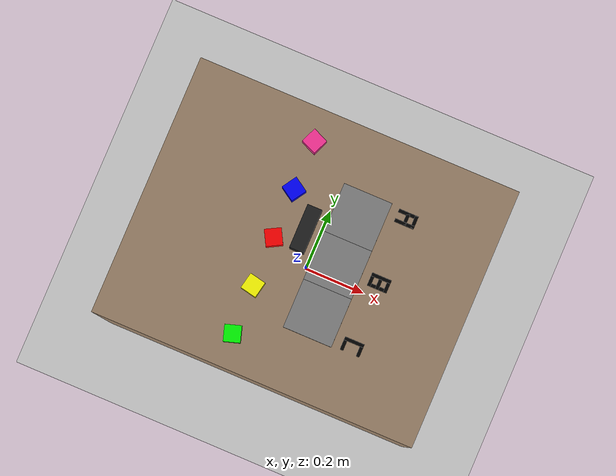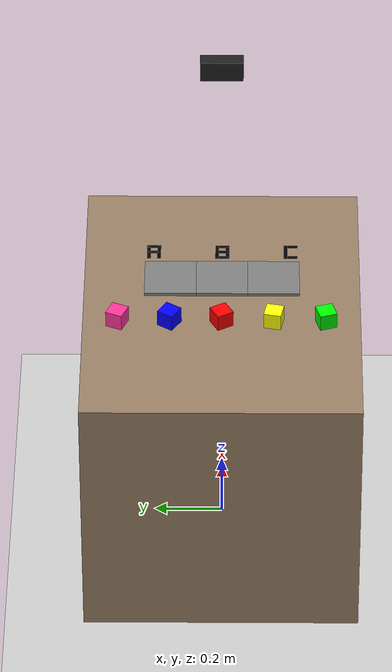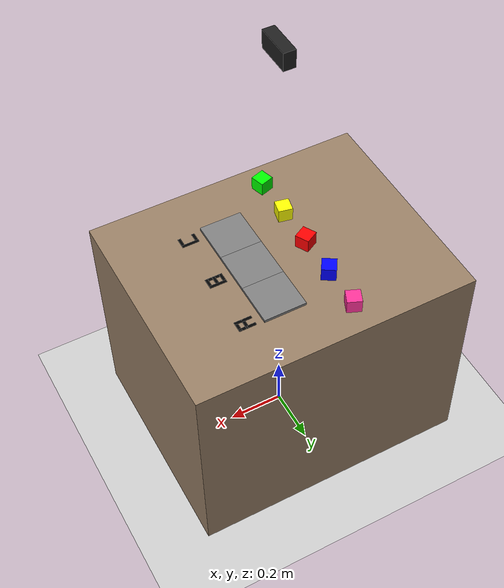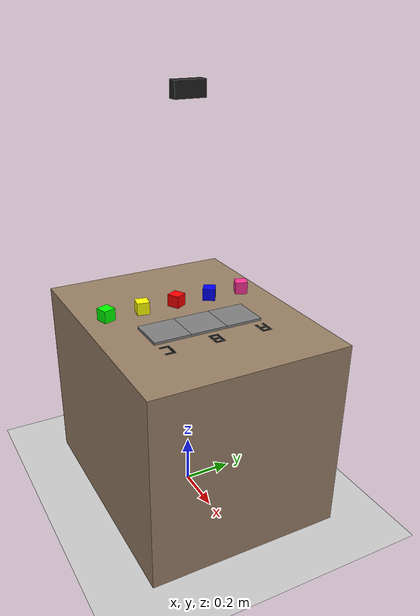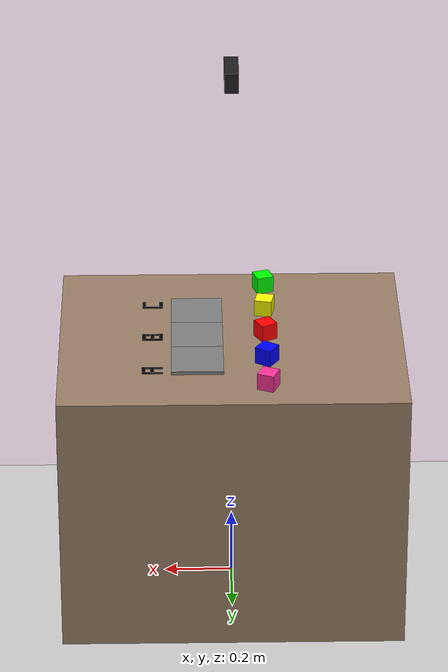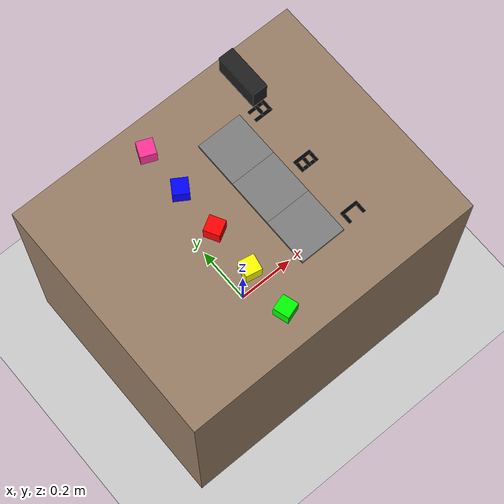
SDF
<?xml version="1.0" ?>
<sdf version="1.8">
  <world name="ur3e_perception_world">

    <!-- Các plugin cốt lõi -->
    <plugin filename="ignition-gazebo-physics-system" name="ignition::gazebo::systems::Physics"/>
    <plugin filename="ignition-gazebo-user-commands-system" name="ignition::gazebo::systems::UserCommands"/>
    <plugin filename="ignition-gazebo-scene-broadcaster-system" name="ignition::gazebo::systems::SceneBroadcaster"/>

    <!-- Camera rendering for Gazebo Fortress. -->
    <plugin filename="ignition-gazebo-sensors-system" name="ignition::gazebo::systems::Sensors">
      <render_engine>ogre2</render_engine>
    </plugin>

    <gravity>0 0 -9.8</gravity>

    <!-- Ánh sáng -->
    <light type="directional" name="sun">
      <cast_shadows>true</cast_shadows>
      <pose>0 0 10 0 0 0</pose>
      <diffuse>0.9 0.9 0.9 1</diffuse>
      <specular>0.2 0.2 0.2 1</specular>
      <direction>-0.5 0.5 -0.9</direction>
    </light>

    <!-- Mặt đất -->
    <model name="ground_plane">
      <static>true</static>
      <link name="link">
        <collision name="collision">
          <geometry><plane><normal>0 0 1</normal><size>10 10</size></plane></geometry>
        </collision>
        <visual name="visual">
          <geometry><plane><normal>0 0 1</normal><size>10 10</size></plane></geometry>
          <material>
            <ambient>0.8 0.8 0.8 1</ambient>
            <diffuse>0.8 0.8 0.8 1</diffuse>
          </material>
        </visual>
      </link>
    </model>

    <!-- ======================= BÀN (TABLE) ======================= -->
    <model name="table">
      <static>true</static>
      <pose>0 0 0.4 0 0 0</pose>
      <link name="link">
        <collision name="collision">
          <geometry><box><size>1.0 0.8 0.8</size></box></geometry>
        </collision>
        <visual name="visual">
          <geometry><box><size>1.0 0.8 0.8</size></box></geometry>
          <material>
            <ambient>0.6 0.5 0.4 1</ambient>
            <diffuse>0.6 0.5 0.4 1</diffuse>
          </material>
        </visual>
      </link>
    </model>

    <!-- ================= VỊ TRÍ ĐẶT ROBOT ================= -->
    <!-- Khi spawn UR3e hãy dùng tọa độ này: X = -0.35, Y = 0.0, Z = 0.8 -->

    <!-- ======================= CUBES ======================= -->
    <!-- Bản sao của ur_table.sdf với 5 cube; pose từ perception sẽ được
         nối vào skill trong bước sau. UR3e + RG2 được spawn bởi launch. -->
    <model name="red_cube">
      <static>false</static>
      <pose>-0.10 0.0 0.825 0 0 0.5</pose>
      <link name="link">
        <inertial><mass>0.05</mass><inertia><ixx>2.08e-5</ixx><iyy>2.08e-5</iyy><izz>2.08e-5</izz></inertia></inertial>
        <collision name="collision">
          <geometry><box><size>0.05 0.05 0.05</size></box></geometry>
          <surface>
            <friction>
              <ode>
                <mu>1000.0</mu>
                <mu2>1000.0</mu2>
              </ode>
            </friction>
          </surface>
        </collision>
        <visual name="visual">
          <geometry><box><size>0.05 0.05 0.05</size></box></geometry>
          <material><ambient>1 0 0 1</ambient><diffuse>1 0 0 1</diffuse></material>
        </visual>
      </link>
    </model>

    <model name="yellow_cube">
      <static>false</static>
      <pose>-0.10 -0.15 0.825 0 0 -0.2</pose>
      <link name="link">
        <inertial><mass>0.05</mass><inertia><ixx>2.08e-5</ixx><iyy>2.08e-5</iyy><izz>2.08e-5</izz></inertia></inertial>
        <collision name="collision">
          <geometry><box><size>0.05 0.05 0.05</size></box></geometry>
          <surface>
            <friction>
              <ode>
                <mu>1000.0</mu>
                <mu2>1000.0</mu2>
              </ode>
            </friction>
          </surface>
        </collision>
        <visual name="visual">
          <geometry><box><size>0.05 0.05 0.05</size></box></geometry>
          <material><ambient>1 1 0 1</ambient><diffuse>1 1 0 1</diffuse></material>
        </visual>
      </link>
    </model>

    <model name="blue_cube">
      <static>false</static>
      <pose>-0.10 0.15 0.825 0 0 1.0</pose>
      <link name="link">
        <inertial><mass>0.05</mass><inertia><ixx>2.08e-5</ixx><iyy>2.08e-5</iyy><izz>2.08e-5</izz></inertia></inertial>
        <collision name="collision">
          <geometry><box><size>0.05 0.05 0.05</size></box></geometry>
          <surface>
            <friction>
              <ode>
                <mu>1000.0</mu>
                <mu2>1000.0</mu2>
              </ode>
            </friction>
          </surface>
        </collision>
        <visual name="visual">
          <geometry><box><size>0.05 0.05 0.05</size></box></geometry>
          <material><ambient>0 0 1 1</ambient><diffuse>0 0 1 1</diffuse></material>
        </visual>
      </link>
    </model>

    <model name="green_cube">
      <static>false</static>
      <pose>-0.10 -0.30 0.825 0 0 0.3</pose>
      <link name="link">
        <inertial><mass>0.05</mass><inertia><ixx>2.08e-5</ixx><iyy>2.08e-5</iyy><izz>2.08e-5</izz></inertia></inertial>
        <collision name="collision">
          <geometry><box><size>0.05 0.05 0.05</size></box></geometry>
          <surface>
            <friction>
              <ode>
                <mu>1000.0</mu>
                <mu2>1000.0</mu2>
              </ode>
            </friction>
          </surface>
        </collision>
        <visual name="visual">
          <geometry><box><size>0.05 0.05 0.05</size></box></geometry>
          <material><ambient>0 1 0 1</ambient><diffuse>0 1 0 1</diffuse></material>
        </visual>
      </link>
    </model>

    <model name="pink_cube">
      <static>false</static>
      <pose>-0.10 0.30 0.825 0 0 -0.4</pose>
      <link name="link">
        <inertial><mass>0.05</mass><inertia><ixx>2.08e-5</ixx><iyy>2.08e-5</iyy><izz>2.08e-5</izz></inertia></inertial>
        <collision name="collision">
          <geometry><box><size>0.05 0.05 0.05</size></box></geometry>
          <surface>
            <friction>
              <ode>
                <mu>1000.0</mu>
                <mu2>1000.0</mu2>
              </ode>
            </friction>
          </surface>
        </collision>
        <visual name="visual">
          <geometry><box><size>0.05 0.05 0.05</size></box></geometry>
          <material><ambient>1 0.2 0.6 1</ambient><diffuse>1 0.2 0.6 1</diffuse></material>
        </visual>
      </link>
    </model>

    <!-- ======================= KHAY ĐÍCH (MÀU XÁM) ======================= -->
    <!-- Tâm khay ở X = 0.10: dịch +X 5 cm ra xa robot so với world cũ. -->
    <model name="tray_A">
      <static>true</static>
      <pose>0.10 0.15 0.805 0 0 0</pose>
      <link name="link">
        <collision name="collision"><geometry><box><size>0.15 0.15 0.01</size></box></geometry></collision>
        <visual name="visual">
          <geometry><box><size>0.15 0.15 0.01</size></box></geometry>
          <material><ambient>0.5 0.5 0.5 1</ambient><diffuse>0.5 0.5 0.5 1</diffuse></material>
        </visual>
      </link>
    </model>

    <model name="tray_B">
      <static>true</static>
      <pose>0.10 0.0 0.805 0 0 0</pose>
      <link name="link">
        <collision name="collision"><geometry><box><size>0.15 0.15 0.01</size></box></geometry></collision>
        <visual name="visual">
          <geometry><box><size>0.15 0.15 0.01</size></box></geometry>
          <material><ambient>0.5 0.5 0.5 1</ambient><diffuse>0.5 0.5 0.5 1</diffuse></material>
        </visual>
      </link>
    </model>

    <model name="tray_C">
      <static>true</static>
      <pose>0.10 -0.15 0.805 0 0 0</pose>
      <link name="link">
        <collision name="collision"><geometry><box><size>0.15 0.15 0.01</size></box></geometry></collision>
        <visual name="visual">
          <geometry><box><size>0.15 0.15 0.01</size></box></geometry>
          <material><ambient>0.5 0.5 0.5 1</ambient><diffuse>0.5 0.5 0.5 1</diffuse></material>
        </visual>
      </link>
    </model>

    <!-- ======================= CHỮ KHẮC TRÊN BÀN ======================= -->
    <!-- Chữ A/B/C cũng dịch +X 5 cm cùng các khay. -->

    <model name="letter_A">
      <static>true</static>
      <pose>0.23 0.2 0.801 0 0 0</pose>
      <link name="link">
        <visual name="left_leg">
          <pose>0 0.015 0 0 0 0</pose>
          <geometry><box><size>0.06 0.01 0.001</size></box></geometry>
          <material><ambient>0 0 0 1</ambient><diffuse>0 0 0 1</diffuse></material>
        </visual>
        <visual name="right_leg">
          <pose>0 -0.015 0 0 0 0</pose>
          <geometry><box><size>0.06 0.01 0.001</size></box></geometry>
          <material><ambient>0 0 0 1</ambient><diffuse>0 0 0 1</diffuse></material>
        </visual>
        <visual name="top_bar">
          <pose>0.025 0 0 0 0 0</pose>
          <geometry><box><size>0.01 0.04 0.001</size></box></geometry>
          <material><ambient>0 0 0 1</ambient><diffuse>0 0 0 1</diffuse></material>
        </visual>
        <visual name="mid_bar">
          <pose>0 0 0 0 0 0</pose>
          <geometry><box><size>0.01 0.04 0.001</size></box></geometry>
          <material><ambient>0 0 0 1</ambient><diffuse>0 0 0 1</diffuse></material>
        </visual>
      </link>
    </model>

    <model name="letter_B">
      <static>true</static>
      <pose>0.23 0.0 0.801 0 0 0</pose>
      <link name="link">
        <visual name="spine">
          <pose>0 0.015 0 0 0 0</pose>
          <geometry><box><size>0.06 0.01 0.001</size></box></geometry>
          <material><ambient>0 0 0 1</ambient><diffuse>0 0 0 1</diffuse></material>
        </visual>
        <visual name="top_bar">
          <pose>0.025 -0.005 0 0 0 0</pose>
          <geometry><box><size>0.01 0.03 0.001</size></box></geometry>
          <material><ambient>0 0 0 1</ambient><diffuse>0 0 0 1</diffuse></material>
        </visual>
        <visual name="mid_bar">
          <pose>0 -0.005 0 0 0 0</pose>
          <geometry><box><size>0.01 0.03 0.001</size></box></geometry>
          <material><ambient>0 0 0 1</ambient><diffuse>0 0 0 1</diffuse></material>
        </visual>
        <visual name="bot_bar">
          <pose>-0.025 -0.005 0 0 0 0</pose>
          <geometry><box><size>0.01 0.03 0.001</size></box></geometry>
          <material><ambient>0 0 0 1</ambient><diffuse>0 0 0 1</diffuse></material>
        </visual>
        <visual name="right_top">
          <pose>0.0125 -0.015 0 0 0 0</pose>
          <geometry><box><size>0.015 0.01 0.001</size></box></geometry>
          <material><ambient>0 0 0 1</ambient><diffuse>0 0 0 1</diffuse></material>
        </visual>
        <visual name="right_bot">
          <pose>-0.0125 -0.015 0 0 0 0</pose>
          <geometry><box><size>0.015 0.01 0.001</size></box></geometry>
          <material><ambient>0 0 0 1</ambient><diffuse>0 0 0 1</diffuse></material>
        </visual>
      </link>
    </model>

    <model name="letter_C">
      <static>true</static>
      <pose>0.23 -0.2 0.801 0 0 0</pose>
      <link name="link">
        <visual name="spine">
          <pose>0 0.015 0 0 0 0</pose>
          <geometry><box><size>0.06 0.01 0.001</size></box></geometry>
          <material><ambient>0 0 0 1</ambient><diffuse>0 0 0 1</diffuse></material>
        </visual>
        <visual name="top_bar">
          <pose>0.025 -0.005 0 0 0 0</pose>
          <geometry><box><size>0.01 0.03 0.001</size></box></geometry>
          <material><ambient>0 0 0 1</ambient><diffuse>0 0 0 1</diffuse></material>
        </visual>
        <visual name="bot_bar">
          <pose>-0.025 -0.005 0 0 0 0</pose>
          <geometry><box><size>0.01 0.03 0.001</size></box></geometry>
          <material><ambient>0 0 0 1</ambient><diffuse>0 0 0 1</diffuse></material>
        </visual>
      </link>
    </model>

    <!-- ======================= RGB-D CAMERA ======================= -->
    <!-- Camera cao hơn mặt bàn 0.8 m, nhìn xuống theo trục +X cục bộ.
         HFOV 80 độ bao phủ 5 cube và 3 zone. Pose và TF trong
         ur3e_rg2_table_depth.launch.py phải khớp khi di chuyển camera. -->
    <model name="depth_camera">
      <static>true</static>
      <pose>0 0 1.6 0 1.5707963267948966 0</pose>
      <link name="camera_link">
        <!-- Thân camera nằm phía sau mặt cảm biến để không chắn ảnh. -->
        <collision name="camera_body_collision">
          <pose>-0.03 0 0 0 0 0</pose>
          <geometry><box><size>0.06 0.12 0.04</size></box></geometry>
        </collision>
        <visual name="camera_body">
          <pose>-0.03 0 0 0 0 0</pose>
          <geometry><box><size>0.06 0.12 0.04</size></box></geometry>
          <material><ambient>0.12 0.12 0.12 1</ambient><diffuse>0.12 0.12 0.12 1</diffuse></material>
        </visual>
        <visual name="camera_lens">
          <pose>0 0 0 0 1.5707963267948966 0</pose>
          <geometry><cylinder><radius>0.012</radius><length>0.002</length></cylinder></geometry>
          <material><ambient>0.05 0.2 0.3 1</ambient><diffuse>0.05 0.2 0.3 1</diffuse></material>
        </visual>
        <sensor name="rgbd_sensor" type="rgbd_camera">
          <always_on>true</always_on>
          <update_rate>15</update_rate>
          <topic>/depth_camera</topic>
          <!-- Fortress point cloud XYZ uses +X forward; launch corrects its
               header to depth_camera_link. Images use the optical frame. -->
          <ignition_frame_id>depth_camera_link</ignition_frame_id>
          <camera>
            <optical_frame_id>depth_camera_optical_frame</optical_frame_id>
            <horizontal_fov>1.3962634015954636</horizontal_fov>
            <image>
              <width>640</width>
              <height>480</height>
              <format>R8G8B8</format>
            </image>
            <clip><near>0.05</near><far>3.0</far></clip>
          </camera>
        </sensor>
      </link>
    </model>

  </world>
</sdf>
